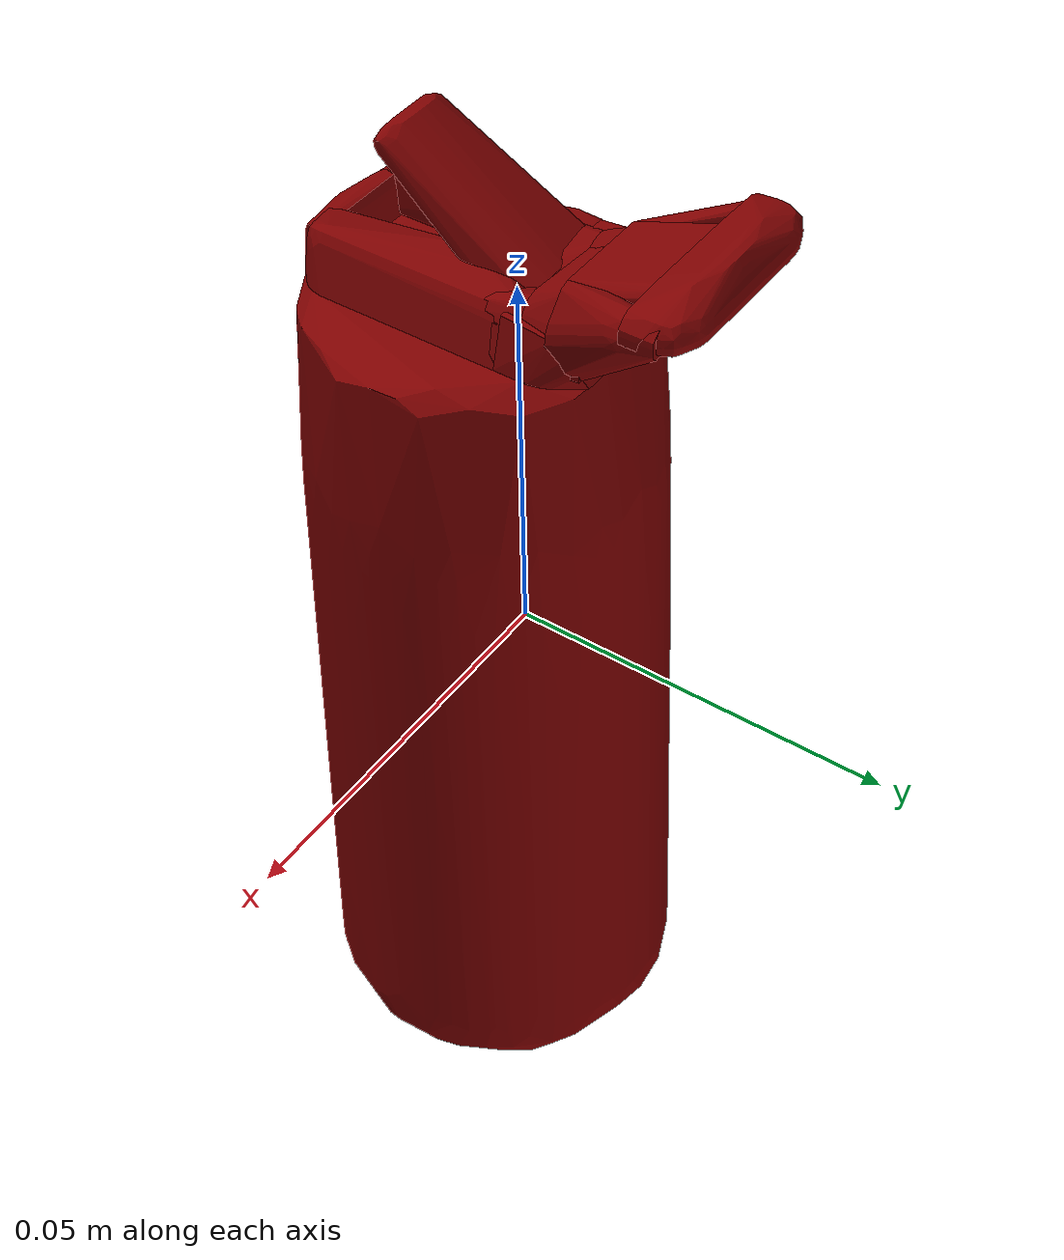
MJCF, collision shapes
<?xml version='1.0' encoding='utf-8'?>
<mujoco model="water_bottle_24">
  <asset>
    <mesh file="visual/model_normalized_0.obj" name="model_normalized_0_vis" scale="0.135 0.135 0.135" refquat="1.0 0.0 0.0 0.0" />
    <mesh file="visual/model_normalized_1.obj" name="model_normalized_1_vis" scale="0.135 0.135 0.135" refquat="1.0 0.0 0.0 0.0" />
    <mesh file="visual/model_normalized_2.obj" name="model_normalized_2_vis" scale="0.135 0.135 0.135" refquat="1.0 0.0 0.0 0.0" />
    <mesh file="visual/model_normalized_3.obj" name="model_normalized_3_vis" scale="0.135 0.135 0.135" refquat="1.0 0.0 0.0 0.0" />
    <mesh file="visual/model_normalized_4.obj" name="model_normalized_4_vis" scale="0.135 0.135 0.135" refquat="1.0 0.0 0.0 0.0" />
    <material name="Bottle.Cap" specular="0.5" shininess="0.000371037" rgba="0.019382 0.184475 0.230740 1.0" />
    <material name="Bottle.Rubber" specular="0.5" shininess="0.023563647" rgba="0.800000 0.800000 0.800000 1.0" />
    <material name="Bottle.Straw" specular="0.5" shininess="0.032000008" rgba="0.800000 0.800000 0.800000 1.0" />
    <material name="Bottle.Transparent" specular="0.5" shininess="0.08193083599999999" rgba="0.911392 0.911392 0.911392 1.0" />
    <material name="Bottle.White" specular="0.5" shininess="0.05410907" rgba="0.800000 0.800000 0.800000 1.0" />
    <mesh file="collision/collision_mesh_collision_0.obj" name="water_collision_mesh_0" scale="0.135 0.135 0.135" refquat="1.0 0.0 0.0 0.0" />
    <mesh file="collision/collision_mesh_collision_1.obj" name="water_collision_mesh_1" scale="0.135 0.135 0.135" refquat="1.0 0.0 0.0 0.0" />
    <mesh file="collision/collision_mesh_collision_2.obj" name="water_collision_mesh_2" scale="0.135 0.135 0.135" refquat="1.0 0.0 0.0 0.0" />
    <mesh file="collision/collision_mesh_collision_3.obj" name="water_collision_mesh_3" scale="0.135 0.135 0.135" refquat="1.0 0.0 0.0 0.0" />
    <mesh file="collision/collision_mesh_collision_4.obj" name="water_collision_mesh_4" scale="0.135 0.135 0.135" refquat="1.0 0.0 0.0 0.0" />
    <mesh file="collision/collision_mesh_collision_5.obj" name="water_collision_mesh_5" scale="0.135 0.135 0.135" refquat="1.0 0.0 0.0 0.0" />
    <mesh file="collision/collision_mesh_collision_6.obj" name="water_collision_mesh_6" scale="0.135 0.135 0.135" refquat="1.0 0.0 0.0 0.0" />
    <mesh file="collision/collision_mesh_collision_7.obj" name="water_collision_mesh_7" scale="0.135 0.135 0.135" refquat="1.0 0.0 0.0 0.0" />
    <mesh file="collision/collision_mesh_collision_8.obj" name="water_collision_mesh_8" scale="0.135 0.135 0.135" refquat="1.0 0.0 0.0 0.0" />
    <mesh file="collision/collision_mesh_collision_9.obj" name="water_collision_mesh_9" scale="0.135 0.135 0.135" refquat="1.0 0.0 0.0 0.0" />
    <mesh file="collision/collision_mesh_collision_10.obj" name="water_collision_mesh_10" scale="0.135 0.135 0.135" refquat="1.0 0.0 0.0 0.0" />
    <mesh file="collision/collision_mesh_collision_11.obj" name="water_collision_mesh_11" scale="0.135 0.135 0.135" refquat="1.0 0.0 0.0 0.0" />
    <mesh file="collision/collision_mesh_collision_12.obj" name="water_collision_mesh_12" scale="0.135 0.135 0.135" refquat="1.0 0.0 0.0 0.0" />
    <mesh file="collision/collision_mesh_collision_13.obj" name="water_collision_mesh_13" scale="0.135 0.135 0.135" refquat="1.0 0.0 0.0 0.0" />
    <mesh file="collision/collision_mesh_collision_14.obj" name="water_collision_mesh_14" scale="0.135 0.135 0.135" refquat="1.0 0.0 0.0 0.0" />
    <mesh file="collision/collision_mesh_collision_15.obj" name="water_collision_mesh_15" scale="0.135 0.135 0.135" refquat="1.0 0.0 0.0 0.0" />
    </asset>
  <default>
    <default class="region">
      <geom group="1" conaffinity="0" contype="0" rgba="0 1 0 0" />
      </default>
    <default class="collision">
      <geom group="0" rgba="0.5 0 0 0.5" density="1000.0" />
      </default>
    </default>
  <worldbody>
    <body>
      <body name="object">
        <geom solimp="0.998 0.998 0.001" solref="0.001 1" density="100" friction="0.95 0.3 0.1" type="mesh" mesh="model_normalized_0_vis" conaffinity="0" contype="0" group="1" material="Bottle.Straw" />
        <geom solimp="0.998 0.998 0.001" solref="0.001 1" density="100" friction="0.95 0.3 0.1" type="mesh" mesh="model_normalized_1_vis" conaffinity="0" contype="0" group="1" material="Bottle.White" />
        <geom solimp="0.998 0.998 0.001" solref="0.001 1" density="100" friction="0.95 0.3 0.1" type="mesh" mesh="model_normalized_2_vis" conaffinity="0" contype="0" group="1" material="Bottle.Rubber" />
        <geom solimp="0.998 0.998 0.001" solref="0.001 1" density="100" friction="0.95 0.3 0.1" type="mesh" mesh="model_normalized_3_vis" conaffinity="0" contype="0" group="1" material="Bottle.Cap" />
        <geom solimp="0.998 0.998 0.001" solref="0.001 1" density="100" friction="0.95 0.3 0.1" type="mesh" mesh="model_normalized_4_vis" conaffinity="0" contype="0" group="1" material="Bottle.Transparent" />
        <geom class="region" name="reg_bbox" type="box" pos="0.00043106445000000085 -0.00014847839999999876 -0.00038012625000000133" size="0.02292775605 0.02722950945 0.06711986835" />
        <geom mesh="water_collision_mesh_0" type="mesh" class="collision" />
        <geom mesh="water_collision_mesh_1" type="mesh" class="collision" />
        <geom mesh="water_collision_mesh_2" type="mesh" class="collision" />
        <geom mesh="water_collision_mesh_3" type="mesh" class="collision" />
        <geom mesh="water_collision_mesh_4" type="mesh" class="collision" />
        <geom mesh="water_collision_mesh_5" type="mesh" class="collision" />
        <geom mesh="water_collision_mesh_6" type="mesh" class="collision" />
        <geom mesh="water_collision_mesh_7" type="mesh" class="collision" />
        <geom mesh="water_collision_mesh_8" type="mesh" class="collision" />
        <geom mesh="water_collision_mesh_9" type="mesh" class="collision" />
        <geom mesh="water_collision_mesh_10" type="mesh" class="collision" />
        <geom mesh="water_collision_mesh_11" type="mesh" class="collision" />
        <geom mesh="water_collision_mesh_12" type="mesh" class="collision" />
        <geom mesh="water_collision_mesh_13" type="mesh" class="collision" />
        <geom mesh="water_collision_mesh_14" type="mesh" class="collision" />
        <geom mesh="water_collision_mesh_15" type="mesh" class="collision" />
        </body>
      </body>
    </worldbody>
  </mujoco>
